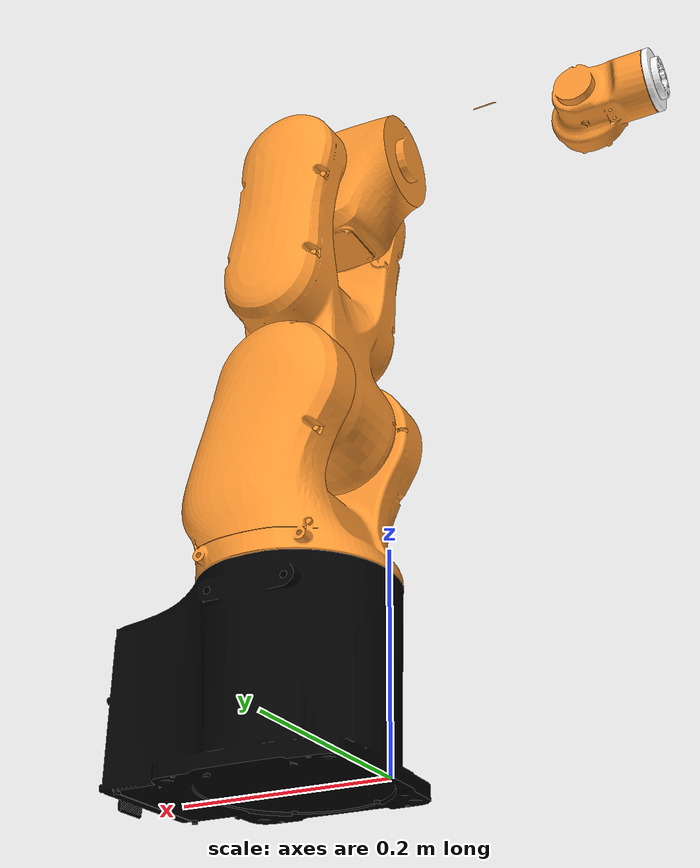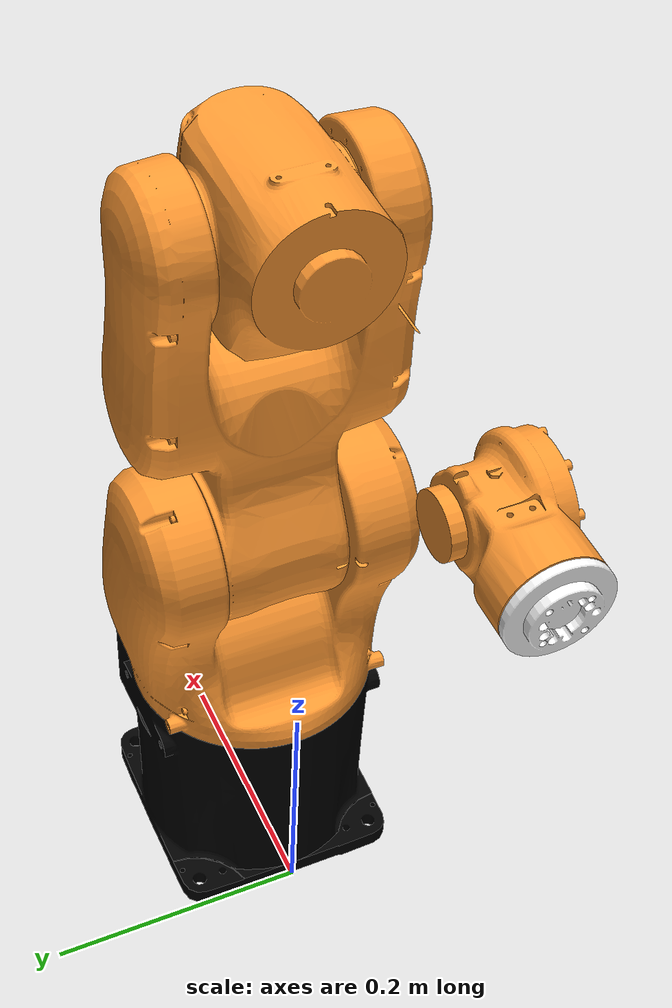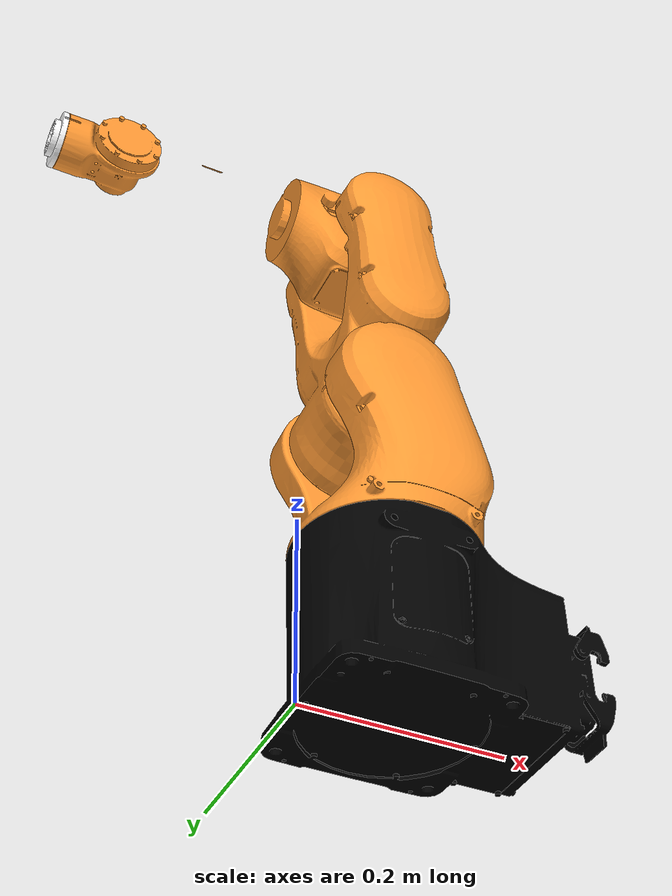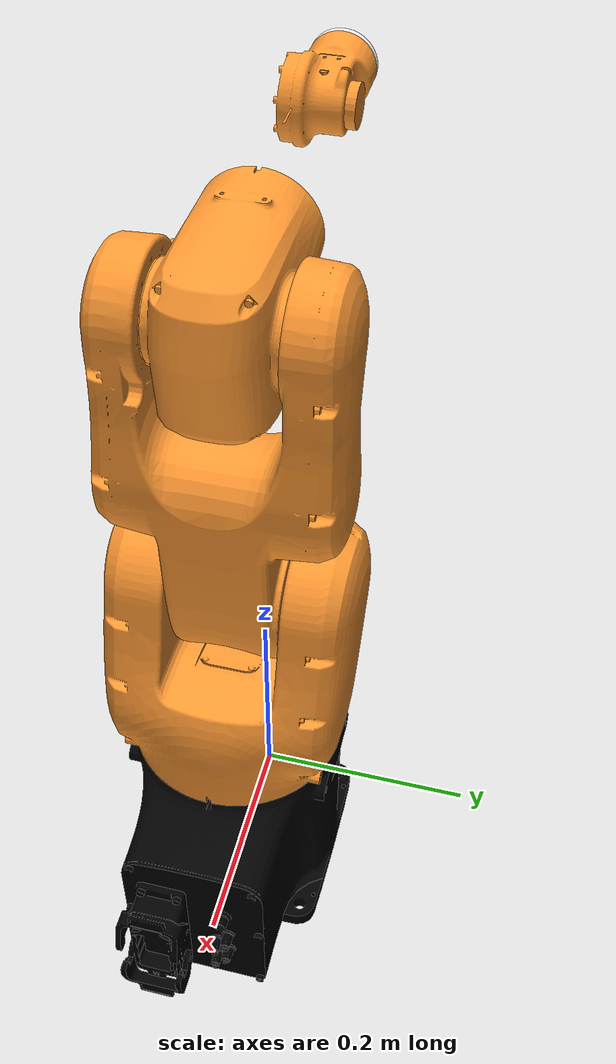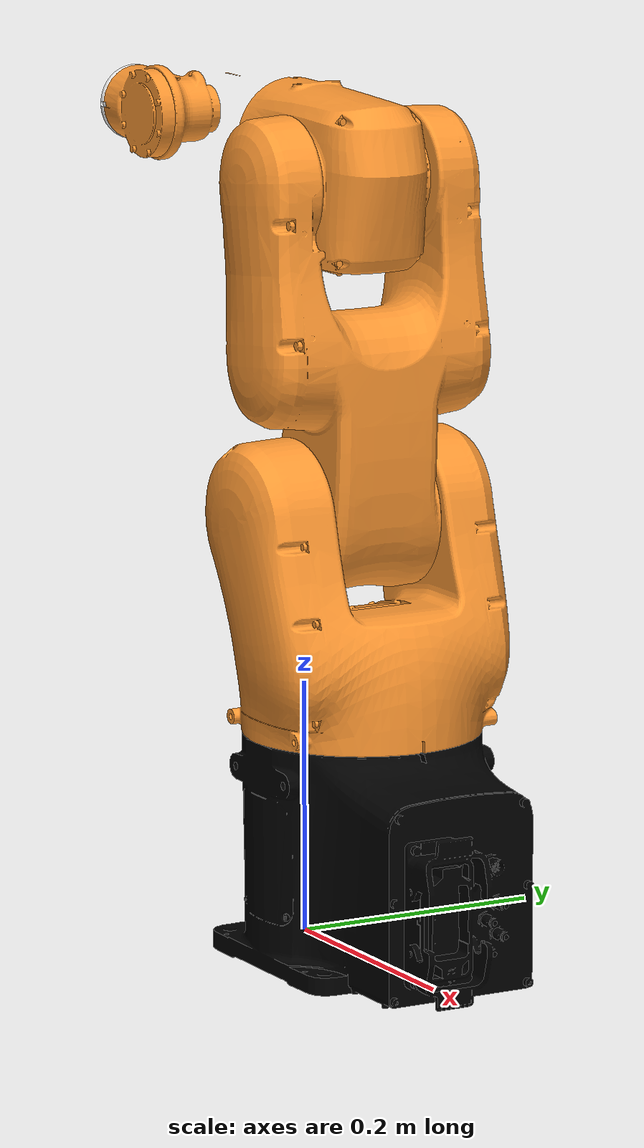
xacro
<?xml version="1.0"?>
<robot xmlns:xacro="http://www.ros.org/wiki/xacro" name="LR4_R560">
    <xacro:arg name="initial_positions_file" default="initial_positions.yaml" />

    <!-- Import LR4_R560 urdf file -->
    <xacro:include filename="$(find erob_description)/urdf/linkhou/linkhou.urdf" />

    <!-- Import control_xacro -->
    <xacro:include filename="LR4_R560.ros2_control.xacro" />

    <xacro:LR4_R560_ros2_control name="LR4_R560_EtherCAT" initial_positions_file="$(arg initial_positions_file)"/>

</robot>

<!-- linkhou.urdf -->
<robot name="LR4_R560">
    <link name="robot_base">
        <collision name="LR4_R560">
            <origin xyz="0.141673 -0.000165 0.081066" rpy="-3.060188 4.708523 -0.081638" />
            <geometry>
                <mesh filename="package://erob_description/meshes/linkhou/linkhou_robot_base_coll_1.dae" />
            </geometry>
        </collision>
        <collision name="LR4_R560">
            <origin xyz="0.141673 -0.000165 0.081066" rpy="-3.060188 4.708523 -0.081638" />
            <geometry>
                <mesh filename="package://erob_description/meshes/linkhou/linkhou_robot_base_coll_2.dae" />
            </geometry>
        </collision>
        <collision name="LR4_R560">
            <origin xyz="0.141673 -0.000165 0.081066" rpy="-3.060188 4.708523 -0.081638" />
            <geometry>
                <mesh filename="package://erob_description/meshes/linkhou/linkhou_robot_base_coll_3.dae" />
            </geometry>
        </collision>
        <collision name="LR4_R560">
            <origin xyz="0.141673 -0.000165 0.081066" rpy="-3.060188 4.708523 -0.081638" />
            <geometry>
                <mesh filename="package://erob_description/meshes/linkhou/linkhou_robot_base_coll_4.dae" />
            </geometry>
        </collision>
        <collision name="LR4_R560">
            <origin xyz="0.141673 -0.000165 0.081066" rpy="-3.060188 4.708523 -0.081638" />
            <geometry>
                <mesh filename="package://erob_description/meshes/linkhou/linkhou_robot_base_coll_5.dae" />
            </geometry>
        </collision>
        <collision name="LR4_R560">
            <origin xyz="0.141673 -0.000165 0.081066" rpy="-3.060188 4.708523 -0.081638" />
            <geometry>
                <mesh filename="package://erob_description/meshes/linkhou/linkhou_robot_base_coll_6.dae" />
            </geometry>
        </collision>
        <collision name="LR4_R560">
            <origin xyz="0.141673 -0.000165 0.081066" rpy="-3.060188 4.708523 -0.081638" />
            <geometry>
                <mesh filename="package://erob_description/meshes/linkhou/linkhou_robot_base_coll_7.dae" />
            </geometry>
        </collision>
        <collision name="LR4_R560">
            <origin xyz="0.141673 -0.000165 0.081066" rpy="-3.060188 4.708523 -0.081638" />
            <geometry>
                <mesh filename="package://erob_description/meshes/linkhou/linkhou_robot_base_coll_8.dae" />
            </geometry>
        </collision>
        <collision name="LR4_R560">
            <origin xyz="0.141673 -0.000165 0.081066" rpy="-3.060188 4.708523 -0.081638" />
            <geometry>
                <mesh filename="package://erob_description/meshes/linkhou/linkhou_robot_base_coll_9.dae" />
            </geometry>
        </collision>
        <collision name="LR4_R560">
            <origin xyz="0.141673 -0.000165 0.081066" rpy="-3.060188 4.708523 -0.081638" />
            <geometry>
                <mesh filename="package://erob_description/meshes/linkhou/linkhou_robot_base_coll_10.dae" />
            </geometry>
        </collision>
        <collision name="LR4_R560">
            <origin xyz="0.141673 -0.000165 0.081066" rpy="-3.060188 4.708523 -0.081638" />
            <geometry>
                <mesh filename="package://erob_description/meshes/linkhou/linkhou_robot_base_coll_11.dae" />
            </geometry>
        </collision>
        <collision name="LR4_R560">
            <origin xyz="0.141673 -0.000165 0.081066" rpy="-3.060188 4.708523 -0.081638" />
            <geometry>
                <mesh filename="package://erob_description/meshes/linkhou/linkhou_robot_base_coll_12.dae" />
            </geometry>
        </collision>
        <collision name="LR4_R560">
            <origin xyz="0.141673 -0.000165 0.081066" rpy="-3.060188 4.708523 -0.081638" />
            <geometry>
                <mesh filename="package://erob_description/meshes/linkhou/linkhou_robot_base_coll_13.dae" />
            </geometry>
        </collision>
        <collision name="LR4_R560">
            <origin xyz="0.141673 -0.000165 0.081066" rpy="-3.060188 4.708523 -0.081638" />
            <geometry>
                <mesh filename="package://erob_description/meshes/linkhou/linkhou_robot_base_coll_14.dae" />
            </geometry>
        </collision>
        <collision name="LR4_R560">
            <origin xyz="0.141673 -0.000165 0.081066" rpy="-3.060188 4.708523 -0.081638" />
            <geometry>
                <mesh filename="package://erob_description/meshes/linkhou/linkhou_robot_base_coll_15.dae" />
            </geometry>
        </collision>
        <collision name="LR4_R560">
            <origin xyz="0.141673 -0.000165 0.081066" rpy="-3.060188 4.708523 -0.081638" />
            <geometry>
                <mesh filename="package://erob_description/meshes/linkhou/linkhou_robot_base_coll_16.dae" />
            </geometry>
        </collision>
        <collision name="LR4_R560">
            <origin xyz="0.141673 -0.000165 0.081066" rpy="-3.060188 4.708523 -0.081638" />
            <geometry>
                <mesh filename="package://erob_description/meshes/linkhou/linkhou_robot_base_coll_17.dae" />
            </geometry>
        </collision>
        <collision name="LR4_R560">
            <origin xyz="0.141673 -0.000165 0.081066" rpy="-3.060188 4.708523 -0.081638" />
            <geometry>
                <mesh filename="package://erob_description/meshes/linkhou/linkhou_robot_base_coll_18.dae" />
            </geometry>
        </collision>
        <collision name="LR4_R560">
            <origin xyz="0.141673 -0.000165 0.081066" rpy="-3.060188 4.708523 -0.081638" />
            <geometry>
                <mesh filename="package://erob_description/meshes/linkhou/linkhou_robot_base_coll_19.dae" />
            </geometry>
        </collision>
        <collision name="LR4_R560">
            <origin xyz="0.141673 -0.000165 0.081066" rpy="-3.060188 4.708523 -0.081638" />
            <geometry>
                <mesh filename="package://erob_description/meshes/linkhou/linkhou_robot_base_coll_20.dae" />
            </geometry>
        </collision>
        <collision name="LR4_R560">
            <origin xyz="0.141673 -0.000165 0.081066" rpy="-3.060188 4.708523 -0.081638" />
            <geometry>
                <mesh filename="package://erob_description/meshes/linkhou/linkhou_robot_base_coll_21.dae" />
            </geometry>
        </collision>
        <collision name="LR4_R560">
            <origin xyz="0.141673 -0.000165 0.081066" rpy="-3.060188 4.708523 -0.081638" />
            <geometry>
                <mesh filename="package://erob_description/meshes/linkhou/linkhou_robot_base_coll_22.dae" />
            </geometry>
        </collision>
        <collision name="LR4_R560">
            <origin xyz="0.141673 -0.000165 0.081066" rpy="-3.060188 4.708523 -0.081638" />
            <geometry>
                <mesh filename="package://erob_description/meshes/linkhou/linkhou_robot_base_coll_23.dae" />
            </geometry>
        </collision>
        <collision name="LR4_R560">
            <origin xyz="0.141673 -0.000165 0.081066" rpy="-3.060188 4.708523 -0.081638" />
            <geometry>
                <mesh filename="package://erob_description/meshes/linkhou/linkhou_robot_base_coll_24.dae" />
            </geometry>
        </collision>
        <collision name="LR4_R560">
            <origin xyz="0.141673 -0.000165 0.081066" rpy="-3.060188 4.708523 -0.081638" />
            <geometry>
                <mesh filename="package://erob_description/meshes/linkhou/linkhou_robot_base_coll_25.dae" />
            </geometry>
        </collision>
        <collision name="LR4_R560">
            <origin xyz="0.141673 -0.000165 0.081066" rpy="-3.060188 4.708523 -0.081638" />
            <geometry>
                <mesh filename="package://erob_description/meshes/linkhou/linkhou_robot_base_coll_26.dae" />
            </geometry>
        </collision>
        <collision name="LR4_R560">
            <origin xyz="0.141673 -0.000165 0.081066" rpy="-3.060188 4.708523 -0.081638" />
            <geometry>
                <mesh filename="package://erob_description/meshes/linkhou/linkhou_robot_base_coll_27.dae" />
            </geometry>
        </collision>
        <collision name="LR4_R560">
            <origin xyz="0.141673 -0.000165 0.081066" rpy="-3.060188 4.708523 -0.081638" />
            <geometry>
                <mesh filename="package://erob_description/meshes/linkhou/linkhou_robot_base_coll_28.dae" />
            </geometry>
        </collision>
        <visual name="LR4_R560_link1_visual">
            <origin xyz="0.142949 0.000366 0.100323" rpy="-0.008230 4.712374 0.008229" />
            <geometry>
                <mesh filename="package://erob_description/meshes/linkhou/linkhou_LR4_R560_link1_visual_vis_1.dae" />
            </geometry>
            <material name="LR4_R560_link1_visual_material">
                <color rgba="0.000000 0.000000 0.000000 1.0" />
            </material>
        </visual>
    </link>
    <joint type="continuous" name="LR4_R560_joint1">
        <axis xyz="0 0 1" />
        <parent link="robot_base" />
        <child link="LR4_R560_link2_respondable" />
        <origin xyz="0.090228 -0.000044 0.200573" rpy="-3.141589 3.141593 3.141593" />
    </joint>
    <link name="LR4_R560_link2_respondable">
        <collision name="LR4_R560_link2_respondable">
            <origin xyz="-0.002580 0.000034 0.090611" rpy="0.001927 3.163632 3.130605" />
            <geometry>
                <mesh filename="package://erob_description/meshes/linkhou/linkhou_LR4_R560_link2_respondable_coll_1.dae" />
            </geometry>
        </collision>
        <collision name="LR4_R560_link2_respondable">
            <origin xyz="-0.002580 0.000034 0.090611" rpy="0.001927 3.163632 3.130605" />
            <geometry>
                <mesh filename="package://erob_description/meshes/linkhou/linkhou_LR4_R560_link2_respondable_coll_2.dae" />
            </geometry>
        </collision>
        <collision name="LR4_R560_link2_respondable">
            <origin xyz="-0.002580 0.000034 0.090611" rpy="0.001927 3.163632 3.130605" />
            <geometry>
                <mesh filename="package://erob_description/meshes/linkhou/linkhou_LR4_R560_link2_respondable_coll_3.dae" />
            </geometry>
        </collision>
        <collision name="LR4_R560_link2_respondable">
            <origin xyz="-0.002580 0.000034 0.090611" rpy="0.001927 3.163632 3.130605" />
            <geometry>
                <mesh filename="package://erob_description/meshes/linkhou/linkhou_LR4_R560_link2_respondable_coll_4.dae" />
            </geometry>
        </collision>
        <collision name="LR4_R560_link2_respondable">
            <origin xyz="-0.002580 0.000034 0.090611" rpy="0.001927 3.163632 3.130605" />
            <geometry>
                <mesh filename="package://erob_description/meshes/linkhou/linkhou_LR4_R560_link2_respondable_coll_5.dae" />
            </geometry>
        </collision>
        <collision name="LR4_R560_link2_respondable">
            <origin xyz="-0.002580 0.000034 0.090611" rpy="0.001927 3.163632 3.130605" />
            <geometry>
                <mesh filename="package://erob_description/meshes/linkhou/linkhou_LR4_R560_link2_respondable_coll_6.dae" />
            </geometry>
        </collision>
        <collision name="LR4_R560_link2_respondable">
            <origin xyz="-0.002580 0.000034 0.090611" rpy="0.001927 3.163632 3.130605" />
            <geometry>
                <mesh filename="package://erob_description/meshes/linkhou/linkhou_LR4_R560_link2_respondable_coll_7.dae" />
            </geometry>
        </collision>
        <collision name="LR4_R560_link2_respondable">
            <origin xyz="-0.002580 0.000034 0.090611" rpy="0.001927 3.163632 3.130605" />
            <geometry>
                <mesh filename="package://erob_description/meshes/linkhou/linkhou_LR4_R560_link2_respondable_coll_8.dae" />
            </geometry>
        </collision>
        <collision name="LR4_R560_link2_respondable">
            <origin xyz="-0.002580 0.000034 0.090611" rpy="0.001927 3.163632 3.130605" />
            <geometry>
                <mesh filename="package://erob_description/meshes/linkhou/linkhou_LR4_R560_link2_respondable_coll_9.dae" />
            </geometry>
        </collision>
        <collision name="LR4_R560_link2_respondable">
            <origin xyz="-0.002580 0.000034 0.090611" rpy="0.001927 3.163632 3.130605" />
            <geometry>
                <mesh filename="package://erob_description/meshes/linkhou/linkhou_LR4_R560_link2_respondable_coll_10.dae" />
            </geometry>
        </collision>
        <collision name="LR4_R560_link2_respondable">
            <origin xyz="-0.002580 0.000034 0.090611" rpy="0.001927 3.163632 3.130605" />
            <geometry>
                <mesh filename="package://erob_description/meshes/linkhou/linkhou_LR4_R560_link2_respondable_coll_11.dae" />
            </geometry>
        </collision>
        <collision name="LR4_R560_link2_respondable">
            <origin xyz="-0.002580 0.000034 0.090611" rpy="0.001927 3.163632 3.130605" />
            <geometry>
                <mesh filename="package://erob_description/meshes/linkhou/linkhou_LR4_R560_link2_respondable_coll_12.dae" />
            </geometry>
        </collision>
        <collision name="LR4_R560_link2_respondable">
            <origin xyz="-0.002580 0.000034 0.090611" rpy="0.001927 3.163632 3.130605" />
            <geometry>
                <mesh filename="package://erob_description/meshes/linkhou/linkhou_LR4_R560_link2_respondable_coll_13.dae" />
            </geometry>
        </collision>
        <collision name="LR4_R560_link2_respondable">
            <origin xyz="-0.002580 0.000034 0.090611" rpy="0.001927 3.163632 3.130605" />
            <geometry>
                <mesh filename="package://erob_description/meshes/linkhou/linkhou_LR4_R560_link2_respondable_coll_14.dae" />
            </geometry>
        </collision>
        <collision name="LR4_R560_link2_respondable">
            <origin xyz="-0.002580 0.000034 0.090611" rpy="0.001927 3.163632 3.130605" />
            <geometry>
                <mesh filename="package://erob_description/meshes/linkhou/linkhou_LR4_R560_link2_respondable_coll_15.dae" />
            </geometry>
        </collision>
        <collision name="LR4_R560_link2_respondable">
            <origin xyz="-0.002580 0.000034 0.090611" rpy="0.001927 3.163632 3.130605" />
            <geometry>
                <mesh filename="package://erob_description/meshes/linkhou/linkhou_LR4_R560_link2_respondable_coll_16.dae" />
            </geometry>
        </collision>
        <collision name="LR4_R560_link2_respondable">
            <origin xyz="-0.002580 0.000034 0.090611" rpy="0.001927 3.163632 3.130605" />
            <geometry>
                <mesh filename="package://erob_description/meshes/linkhou/linkhou_LR4_R560_link2_respondable_coll_17.dae" />
            </geometry>
        </collision>
        <collision name="LR4_R560_link2_respondable">
            <origin xyz="-0.002580 0.000034 0.090611" rpy="0.001927 3.163632 3.130605" />
            <geometry>
                <mesh filename="package://erob_description/meshes/linkhou/linkhou_LR4_R560_link2_respondable_coll_18.dae" />
            </geometry>
        </collision>
        <collision name="LR4_R560_link2_respondable">
            <origin xyz="-0.002580 0.000034 0.090611" rpy="0.001927 3.163632 3.130605" />
            <geometry>
                <mesh filename="package://erob_description/meshes/linkhou/linkhou_LR4_R560_link2_respondable_coll_19.dae" />
            </geometry>
        </collision>
        <collision name="LR4_R560_link2_respondable">
            <origin xyz="-0.002580 0.000034 0.090611" rpy="0.001927 3.163632 3.130605" />
            <geometry>
                <mesh filename="package://erob_description/meshes/linkhou/linkhou_LR4_R560_link2_respondable_coll_20.dae" />
            </geometry>
        </collision>
        <collision name="LR4_R560_link2_respondable">
            <origin xyz="-0.002580 0.000034 0.090611" rpy="0.001927 3.163632 3.130605" />
            <geometry>
                <mesh filename="package://erob_description/meshes/linkhou/linkhou_LR4_R560_link2_respondable_coll_21.dae" />
            </geometry>
        </collision>
        <collision name="LR4_R560_link2_respondable">
            <origin xyz="-0.002580 0.000034 0.090611" rpy="0.001927 3.163632 3.130605" />
            <geometry>
                <mesh filename="package://erob_description/meshes/linkhou/linkhou_LR4_R560_link2_respondable_coll_22.dae" />
            </geometry>
        </collision>
        <collision name="LR4_R560_link2_respondable">
            <origin xyz="-0.002580 0.000034 0.090611" rpy="0.001927 3.163632 3.130605" />
            <geometry>
                <mesh filename="package://erob_description/meshes/linkhou/linkhou_LR4_R560_link2_respondable_coll_23.dae" />
            </geometry>
        </collision>
        <collision name="LR4_R560_link2_respondable">
            <origin xyz="-0.002580 0.000034 0.090611" rpy="0.001927 3.163632 3.130605" />
            <geometry>
                <mesh filename="package://erob_description/meshes/linkhou/linkhou_LR4_R560_link2_respondable_coll_24.dae" />
            </geometry>
        </collision>
        <collision name="LR4_R560_link2_respondable">
            <origin xyz="-0.002580 0.000034 0.090611" rpy="0.001927 3.163632 3.130605" />
            <geometry>
                <mesh filename="package://erob_description/meshes/linkhou/linkhou_LR4_R560_link2_respondable_coll_25.dae" />
            </geometry>
        </collision>
        <collision name="LR4_R560_link2_respondable">
            <origin xyz="-0.002580 0.000034 0.090611" rpy="0.001927 3.163632 3.130605" />
            <geometry>
                <mesh filename="package://erob_description/meshes/linkhou/linkhou_LR4_R560_link2_respondable_coll_26.dae" />
            </geometry>
        </collision>
        <collision name="LR4_R560_link2_respondable">
            <origin xyz="-0.002580 0.000034 0.090611" rpy="0.001927 3.163632 3.130605" />
            <geometry>
                <mesh filename="package://erob_description/meshes/linkhou/linkhou_LR4_R560_link2_respondable_coll_27.dae" />
            </geometry>
        </collision>
        <collision name="LR4_R560_link2_respondable">
            <origin xyz="-0.002580 0.000034 0.090611" rpy="0.001927 3.163632 3.130605" />
            <geometry>
                <mesh filename="package://erob_description/meshes/linkhou/linkhou_LR4_R560_link2_respondable_coll_28.dae" />
            </geometry>
        </collision>
        <visual name="LR4_R560_link2_visual">
            <origin xyz="0.000077 -0.000000 0.089681" rpy="3.141592 3.141589 3.141592" />
            <geometry>
                <mesh filename="package://erob_description/meshes/linkhou/linkhou_LR4_R560_link2_visual_vis_1.dae" />
            </geometry>
            <material name="LR4_R560_link2_visual_material">
                <color rgba="1.000000 0.600000 0.200000 1.0" />
            </material>
        </visual>
    </link>
    <joint type="continuous" name="LR4_R560_joint2">
        <axis xyz="0 0 1" />
        <parent link="LR4_R560_link2_respondable" />
        <child link="LR4_R560_link3_respondable" />
        <origin xyz="-0.020000 -0.000000 0.144500" rpy="-1.570800 3.141593 -3.141592" />
    </joint>
    <link name="LR4_R560_link3_respondable">
        <collision name="LR4_R560_link3_respondable">
            <origin xyz="0.003296 0.126862 0.000113" rpy="1.568994 3.131033 -3.129216" />
            <geometry>
                <mesh filename="package://erob_description/meshes/linkhou/linkhou_LR4_R560_link3_respondable_coll_1.dae" />
            </geometry>
        </collision>
        <collision name="LR4_R560_link3_respondable">
            <origin xyz="0.003296 0.126862 0.000113" rpy="1.568994 3.131033 -3.129216" />
            <geometry>
                <mesh filename="package://erob_description/meshes/linkhou/linkhou_LR4_R560_link3_respondable_coll_2.dae" />
            </geometry>
        </collision>
        <collision name="LR4_R560_link3_respondable">
            <origin xyz="0.003296 0.126862 0.000113" rpy="1.568994 3.131033 -3.129216" />
            <geometry>
                <mesh filename="package://erob_description/meshes/linkhou/linkhou_LR4_R560_link3_respondable_coll_3.dae" />
            </geometry>
        </collision>
        <collision name="LR4_R560_link3_respondable">
            <origin xyz="0.003296 0.126862 0.000113" rpy="1.568994 3.131033 -3.129216" />
            <geometry>
                <mesh filename="package://erob_description/meshes/linkhou/linkhou_LR4_R560_link3_respondable_coll_4.dae" />
            </geometry>
        </collision>
        <collision name="LR4_R560_link3_respondable">
            <origin xyz="0.003296 0.126862 0.000113" rpy="1.568994 3.131033 -3.129216" />
            <geometry>
                <mesh filename="package://erob_description/meshes/linkhou/linkhou_LR4_R560_link3_respondable_coll_5.dae" />
            </geometry>
        </collision>
        <collision name="LR4_R560_link3_respondable">
            <origin xyz="0.003296 0.126862 0.000113" rpy="1.568994 3.131033 -3.129216" />
            <geometry>
                <mesh filename="package://erob_description/meshes/linkhou/linkhou_LR4_R560_link3_respondable_coll_6.dae" />
            </geometry>
        </collision>
        <collision name="LR4_R560_link3_respondable">
            <origin xyz="0.003296 0.126862 0.000113" rpy="1.568994 3.131033 -3.129216" />
            <geometry>
                <mesh filename="package://erob_description/meshes/linkhou/linkhou_LR4_R560_link3_respondable_coll_7.dae" />
            </geometry>
        </collision>
        <collision name="LR4_R560_link3_respondable">
            <origin xyz="0.003296 0.126862 0.000113" rpy="1.568994 3.131033 -3.129216" />
            <geometry>
                <mesh filename="package://erob_description/meshes/linkhou/linkhou_LR4_R560_link3_respondable_coll_8.dae" />
            </geometry>
        </collision>
        <collision name="LR4_R560_link3_respondable">
            <origin xyz="0.003296 0.126862 0.000113" rpy="1.568994 3.131033 -3.129216" />
            <geometry>
                <mesh filename="package://erob_description/meshes/linkhou/linkhou_LR4_R560_link3_respondable_coll_9.dae" />
            </geometry>
        </collision>
        <collision name="LR4_R560_link3_respondable">
            <origin xyz="0.003296 0.126862 0.000113" rpy="1.568994 3.131033 -3.129216" />
            <geometry>
                <mesh filename="package://erob_description/meshes/linkhou/linkhou_LR4_R560_link3_respondable_coll_10.dae" />
            </geometry>
        </collision>
        <collision name="LR4_R560_link3_respondable">
            <origin xyz="0.003296 0.126862 0.000113" rpy="1.568994 3.131033 -3.129216" />
            <geometry>
                <mesh filename="package://erob_description/meshes/linkhou/linkhou_LR4_R560_link3_respondable_coll_11.dae" />
            </geometry>
        </collision>
        <collision name="LR4_R560_link3_respondable">
            <origin xyz="0.003296 0.126862 0.000113" rpy="1.568994 3.131033 -3.129216" />
            <geometry>
                <mesh filename="package://erob_description/meshes/linkhou/linkhou_LR4_R560_link3_respondable_coll_12.dae" />
            </geometry>
        </collision>
        <collision name="LR4_R560_link3_respondable">
            <origin xyz="0.003296 0.126862 0.000113" rpy="1.568994 3.131033 -3.129216" />
            <geometry>
                <mesh filename="package://erob_description/meshes/linkhou/linkhou_LR4_R560_link3_respondable_coll_13.dae" />
            </geometry>
        </collision>
        <collision name="LR4_R560_link3_respondable">
            <origin xyz="0.003296 0.126862 0.000113" rpy="1.568994 3.131033 -3.129216" />
            <geometry>
                <mesh filename="package://erob_description/meshes/linkhou/linkhou_LR4_R560_link3_respondable_coll_14.dae" />
            </geometry>
        </collision>
        <collision name="LR4_R560_link3_respondable">
            <origin xyz="0.003296 0.126862 0.000113" rpy="1.568994 3.131033 -3.129216" />
            <geometry>
                <mesh filename="package://erob_description/meshes/linkhou/linkhou_LR4_R560_link3_respondable_coll_15.dae" />
            </geometry>
        </collision>
        <visual name="LR4_R560_link3_visual">
            <origin xyz="0.004963 0.126339 -0.000129" rpy="1.571017 3.153163 3.127580" />
            <geometry>
                <mesh filename="package://erob_description/meshes/linkhou/linkhou_LR4_R560_link3_visual_vis_1.dae" />
            </geometry>
            <material name="LR4_R560_link3_visual_material">
                <color rgba="1.000000 0.600000 0.200000 1.0" />
            </material>
        </visual>
    </link>
    <joint type="continuous" name="LR4_R560_joint3">
        <axis xyz="0 0 1" />
        <parent link="LR4_R560_link3_respondable" />
        <child link="LR4_R560_link4_respondable" />
        <origin xyz="0.000000 0.260000 0.000000" rpy="-3.141592 3.141600 -0.000000" />
    </joint>
    <link name="LR4_R560_link4_respondable">
        <collision name="LR4_R560_link4_respondable">
            <origin xyz="0.013688 0.002571 0.002943" rpy="2.569508 1.614796 2.498315" />
            <geometry>
                <mesh filename="package://erob_description/meshes/linkhou/linkhou_LR4_R560_link4_respondable_coll_1.dae" />
            </geometry>
        </collision>
        <collision name="LR4_R560_link4_respondable">
            <origin xyz="0.013688 0.002571 0.002943" rpy="2.569508 1.614796 2.498315" />
            <geometry>
                <mesh filename="package://erob_description/meshes/linkhou/linkhou_LR4_R560_link4_respondable_coll_2.dae" />
            </geometry>
        </collision>
        <collision name="LR4_R560_link4_respondable">
            <origin xyz="0.013688 0.002571 0.002943" rpy="2.569508 1.614796 2.498315" />
            <geometry>
                <mesh filename="package://erob_description/meshes/linkhou/linkhou_LR4_R560_link4_respondable_coll_3.dae" />
            </geometry>
        </collision>
        <collision name="LR4_R560_link4_respondable">
            <origin xyz="0.013688 0.002571 0.002943" rpy="2.569508 1.614796 2.498315" />
            <geometry>
                <mesh filename="package://erob_description/meshes/linkhou/linkhou_LR4_R560_link4_respondable_coll_4.dae" />
            </geometry>
        </collision>
        <collision name="LR4_R560_link4_respondable">
            <origin xyz="0.013688 0.002571 0.002943" rpy="2.569508 1.614796 2.498315" />
            <geometry>
                <mesh filename="package://erob_description/meshes/linkhou/linkhou_LR4_R560_link4_respondable_coll_5.dae" />
            </geometry>
        </collision>
        <collision name="LR4_R560_link4_respondable">
            <origin xyz="0.013688 0.002571 0.002943" rpy="2.569508 1.614796 2.498315" />
            <geometry>
                <mesh filename="package://erob_description/meshes/linkhou/linkhou_LR4_R560_link4_respondable_coll_6.dae" />
            </geometry>
        </collision>
        <collision name="LR4_R560_link4_respondable">
            <origin xyz="0.013688 0.002571 0.002943" rpy="2.569508 1.614796 2.498315" />
            <geometry>
                <mesh filename="package://erob_description/meshes/linkhou/linkhou_LR4_R560_link4_respondable_coll_7.dae" />
            </geometry>
        </collision>
        <collision name="LR4_R560_link4_respondable">
            <origin xyz="0.013688 0.002571 0.002943" rpy="2.569508 1.614796 2.498315" />
            <geometry>
                <mesh filename="package://erob_description/meshes/linkhou/linkhou_LR4_R560_link4_respondable_coll_8.dae" />
            </geometry>
        </collision>
        <collision name="LR4_R560_link4_respondable">
            <origin xyz="0.013688 0.002571 0.002943" rpy="2.569508 1.614796 2.498315" />
            <geometry>
                <mesh filename="package://erob_description/meshes/linkhou/linkhou_LR4_R560_link4_respondable_coll_9.dae" />
            </geometry>
        </collision>
        <collision name="LR4_R560_link4_respondable">
            <origin xyz="0.013688 0.002571 0.002943" rpy="2.569508 1.614796 2.498315" />
            <geometry>
                <mesh filename="package://erob_description/meshes/linkhou/linkhou_LR4_R560_link4_respondable_coll_10.dae" />
            </geometry>
        </collision>
        <collision name="LR4_R560_link4_respondable">
            <origin xyz="0.013688 0.002571 0.002943" rpy="2.569508 1.614796 2.498315" />
            <geometry>
                <mesh filename="package://erob_description/meshes/linkhou/linkhou_LR4_R560_link4_respondable_coll_11.dae" />
            </geometry>
        </collision>
        <collision name="LR4_R560_link4_respondable">
            <origin xyz="0.013688 0.002571 0.002943" rpy="2.569508 1.614796 2.498315" />
            <geometry>
                <mesh filename="package://erob_description/meshes/linkhou/linkhou_LR4_R560_link4_respondable_coll_12.dae" />
            </geometry>
        </collision>
        <visual name="LR4_R560_link4_visual">
            <origin xyz="0.011481 0.000933 0.004500" rpy="-1.546407 1.570815 -1.537021" />
            <geometry>
                <mesh filename="package://erob_description/meshes/linkhou/linkhou_LR4_R560_link4_visual_vis_1.dae" />
            </geometry>
            <material name="LR4_R560_link4_visual_material">
                <color rgba="1.000000 0.600000 0.200000 1.0" />
            </material>
        </visual>
    </link>
    <joint type="continuous" name="LR4_R560_joint4">
        <axis xyz="0 0 1" />
        <parent link="LR4_R560_link4_respondable" />
        <child link="LR4_R560_link5_respondable" />
        <origin xyz="0.090184 -0.019152 0.000000" rpy="-1.570785 3.141592 -1.561411" />
    </joint>
    <link name="LR4_R560_link5_respondable">
        <collision name="LR4_R560_link5_respondable">
            <origin xyz="-0.006137 -0.000332 0.112352" rpy="-0.002565 3.173645 -3.075990" />
            <geometry>
                <mesh filename="package://erob_description/meshes/linkhou/linkhou_LR4_R560_link5_respondable_coll_1.dae" />
            </geometry>
        </collision>
        <collision name="LR4_R560_link5_respondable">
            <origin xyz="-0.006137 -0.000332 0.112352" rpy="-0.002565 3.173645 -3.075990" />
            <geometry>
                <mesh filename="package://erob_description/meshes/linkhou/linkhou_LR4_R560_link5_respondable_coll_2.dae" />
            </geometry>
        </collision>
        <collision name="LR4_R560_link5_respondable">
            <origin xyz="-0.006137 -0.000332 0.112352" rpy="-0.002565 3.173645 -3.075990" />
            <geometry>
                <mesh filename="package://erob_description/meshes/linkhou/linkhou_LR4_R560_link5_respondable_coll_3.dae" />
            </geometry>
        </collision>
        <collision name="LR4_R560_link5_respondable">
            <origin xyz="-0.006137 -0.000332 0.112352" rpy="-0.002565 3.173645 -3.075990" />
            <geometry>
                <mesh filename="package://erob_description/meshes/linkhou/linkhou_LR4_R560_link5_respondable_coll_4.dae" />
            </geometry>
        </collision>
        <collision name="LR4_R560_link5_respondable">
            <origin xyz="-0.006137 -0.000332 0.112352" rpy="-0.002565 3.173645 -3.075990" />
            <geometry>
                <mesh filename="package://erob_description/meshes/linkhou/linkhou_LR4_R560_link5_respondable_coll_5.dae" />
            </geometry>
        </collision>
        <collision name="LR4_R560_link5_respondable">
            <origin xyz="-0.006137 -0.000332 0.112352" rpy="-0.002565 3.173645 -3.075990" />
            <geometry>
                <mesh filename="package://erob_description/meshes/linkhou/linkhou_LR4_R560_link5_respondable_coll_6.dae" />
            </geometry>
        </collision>
        <collision name="LR4_R560_link5_respondable">
            <origin xyz="-0.006137 -0.000332 0.112352" rpy="-0.002565 3.173645 -3.075990" />
            <geometry>
                <mesh filename="package://erob_description/meshes/linkhou/linkhou_LR4_R560_link5_respondable_coll_7.dae" />
            </geometry>
        </collision>
        <collision name="LR4_R560_link5_respondable">
            <origin xyz="-0.006137 -0.000332 0.112352" rpy="-0.002565 3.173645 -3.075990" />
            <geometry>
                <mesh filename="package://erob_description/meshes/linkhou/linkhou_LR4_R560_link5_respondable_coll_8.dae" />
            </geometry>
        </collision>
        <collision name="LR4_R560_link5_respondable">
            <origin xyz="-0.006137 -0.000332 0.112352" rpy="-0.002565 3.173645 -3.075990" />
            <geometry>
                <mesh filename="package://erob_description/meshes/linkhou/linkhou_LR4_R560_link5_respondable_coll_9.dae" />
            </geometry>
        </collision>
        <collision name="LR4_R560_link5_respondable">
            <origin xyz="-0.006137 -0.000332 0.112352" rpy="-0.002565 3.173645 -3.075990" />
            <geometry>
                <mesh filename="package://erob_description/meshes/linkhou/linkhou_LR4_R560_link5_respondable_coll_10.dae" />
            </geometry>
        </collision>
        <collision name="LR4_R560_link5_respondable">
            <origin xyz="-0.006137 -0.000332 0.112352" rpy="-0.002565 3.173645 -3.075990" />
            <geometry>
                <mesh filename="package://erob_description/meshes/linkhou/linkhou_LR4_R560_link5_respondable_coll_11.dae" />
            </geometry>
        </collision>
        <collision name="LR4_R560_link5_respondable">
            <origin xyz="-0.006137 -0.000332 0.112352" rpy="-0.002565 3.173645 -3.075990" />
            <geometry>
                <mesh filename="package://erob_description/meshes/linkhou/linkhou_LR4_R560_link5_respondable_coll_12.dae" />
            </geometry>
        </collision>
        <collision name="LR4_R560_link5_respondable">
            <origin xyz="-0.006137 -0.000332 0.112352" rpy="-0.002565 3.173645 -3.075990" />
            <geometry>
                <mesh filename="package://erob_description/meshes/linkhou/linkhou_LR4_R560_link5_respondable_coll_13.dae" />
            </geometry>
        </collision>
        <collision name="LR4_R560_link5_respondable">
            <origin xyz="-0.006137 -0.000332 0.112352" rpy="-0.002565 3.173645 -3.075990" />
            <geometry>
                <mesh filename="package://erob_description/meshes/linkhou/linkhou_LR4_R560_link5_respondable_coll_14.dae" />
            </geometry>
        </collision>
        <visual name="LR4_R560_link5_visual">
            <origin xyz="-0.006347 -0.000195 0.112127" rpy="3.138413 3.183540 -3.081190" />
            <geometry>
                <mesh filename="package://erob_description/meshes/linkhou/linkhou_LR4_R560_link5_visual_vis_1.dae" />
            </geometry>
            <material name="LR4_R560_link5_visual_material">
                <color rgba="1.000000 0.600000 0.200000 1.0" />
            </material>
        </visual>
    </link>
    <joint type="continuous" name="LR4_R560_joint5">
        <axis xyz="0 0 1" />
        <parent link="LR4_R560_link5_respondable" />
        <child link="LR4_R560_link6_respondable" />
        <origin xyz="0.000002 0.000000 0.190000" rpy="-1.570471 1.580184 -3.141265" />
    </joint>
    <link name="LR4_R560_link6_respondable">
        <collision name="LR4_R560_link6_respondable">
            <origin xyz="-0.014049 0.000067 -0.000817" rpy="1.840752 1.577596 1.827882" />
            <geometry>
                <mesh filename="package://erob_description/meshes/linkhou/linkhou_LR4_R560_link6_respondable_coll_1.dae" />
            </geometry>
        </collision>
        <collision name="LR4_R560_link6_respondable">
            <origin xyz="-0.014049 0.000067 -0.000817" rpy="1.840752 1.577596 1.827882" />
            <geometry>
                <mesh filename="package://erob_description/meshes/linkhou/linkhou_LR4_R560_link6_respondable_coll_2.dae" />
            </geometry>
        </collision>
        <collision name="LR4_R560_link6_respondable">
            <origin xyz="-0.014049 0.000067 -0.000817" rpy="1.840752 1.577596 1.827882" />
            <geometry>
                <mesh filename="package://erob_description/meshes/linkhou/linkhou_LR4_R560_link6_respondable_coll_3.dae" />
            </geometry>
        </collision>
        <collision name="LR4_R560_link6_respondable">
            <origin xyz="-0.014049 0.000067 -0.000817" rpy="1.840752 1.577596 1.827882" />
            <geometry>
                <mesh filename="package://erob_description/meshes/linkhou/linkhou_LR4_R560_link6_respondable_coll_4.dae" />
            </geometry>
        </collision>
        <collision name="LR4_R560_link6_respondable">
            <origin xyz="-0.014049 0.000067 -0.000817" rpy="1.840752 1.577596 1.827882" />
            <geometry>
                <mesh filename="package://erob_description/meshes/linkhou/linkhou_LR4_R560_link6_respondable_coll_5.dae" />
            </geometry>
        </collision>
        <collision name="LR4_R560_link6_respondable">
            <origin xyz="-0.014049 0.000067 -0.000817" rpy="1.840752 1.577596 1.827882" />
            <geometry>
                <mesh filename="package://erob_description/meshes/linkhou/linkhou_LR4_R560_link6_respondable_coll_6.dae" />
            </geometry>
        </collision>
        <collision name="LR4_R560_link6_respondable">
            <origin xyz="-0.014049 0.000067 -0.000817" rpy="1.840752 1.577596 1.827882" />
            <geometry>
                <mesh filename="package://erob_description/meshes/linkhou/linkhou_LR4_R560_link6_respondable_coll_7.dae" />
            </geometry>
        </collision>
        <collision name="LR4_R560_link6_respondable">
            <origin xyz="-0.014049 0.000067 -0.000817" rpy="1.840752 1.577596 1.827882" />
            <geometry>
                <mesh filename="package://erob_description/meshes/linkhou/linkhou_LR4_R560_link6_respondable_coll_8.dae" />
            </geometry>
        </collision>
        <collision name="LR4_R560_link6_respondable">
            <origin xyz="-0.014049 0.000067 -0.000817" rpy="1.840752 1.577596 1.827882" />
            <geometry>
                <mesh filename="package://erob_description/meshes/linkhou/linkhou_LR4_R560_link6_respondable_coll_9.dae" />
            </geometry>
        </collision>
        <collision name="LR4_R560_link6_respondable">
            <origin xyz="-0.014049 0.000067 -0.000817" rpy="1.840752 1.577596 1.827882" />
            <geometry>
                <mesh filename="package://erob_description/meshes/linkhou/linkhou_LR4_R560_link6_respondable_coll_10.dae" />
            </geometry>
        </collision>
        <collision name="LR4_R560_link6_respondable">
            <origin xyz="-0.014049 0.000067 -0.000817" rpy="1.840752 1.577596 1.827882" />
            <geometry>
                <mesh filename="package://erob_description/meshes/linkhou/linkhou_LR4_R560_link6_respondable_coll_11.dae" />
            </geometry>
        </collision>
        <collision name="LR4_R560_link6_respondable">
            <origin xyz="-0.014049 0.000067 -0.000817" rpy="1.840752 1.577596 1.827882" />
            <geometry>
                <mesh filename="package://erob_description/meshes/linkhou/linkhou_LR4_R560_link6_respondable_coll_12.dae" />
            </geometry>
        </collision>
        <collision name="LR4_R560_link6_respondable">
            <origin xyz="-0.014049 0.000067 -0.000817" rpy="1.840752 1.577596 1.827882" />
            <geometry>
                <mesh filename="package://erob_description/meshes/linkhou/linkhou_LR4_R560_link6_respondable_coll_13.dae" />
            </geometry>
        </collision>
        <collision name="LR4_R560_link6_respondable">
            <origin xyz="-0.014049 0.000067 -0.000817" rpy="1.840752 1.577596 1.827882" />
            <geometry>
                <mesh filename="package://erob_description/meshes/linkhou/linkhou_LR4_R560_link6_respondable_coll_14.dae" />
            </geometry>
        </collision>
        <collision name="LR4_R560_link6_respondable">
            <origin xyz="-0.014049 0.000067 -0.000817" rpy="1.840752 1.577596 1.827882" />
            <geometry>
                <mesh filename="package://erob_description/meshes/linkhou/linkhou_LR4_R560_link6_respondable_coll_15.dae" />
            </geometry>
        </collision>
        <collision name="LR4_R560_link6_respondable">
            <origin xyz="-0.014049 0.000067 -0.000817" rpy="1.840752 1.577596 1.827882" />
            <geometry>
                <mesh filename="package://erob_description/meshes/linkhou/linkhou_LR4_R560_link6_respondable_coll_16.dae" />
            </geometry>
        </collision>
        <collision name="LR4_R560_link6_respondable">
            <origin xyz="-0.014049 0.000067 -0.000817" rpy="1.840752 1.577596 1.827882" />
            <geometry>
                <mesh filename="package://erob_description/meshes/linkhou/linkhou_LR4_R560_link6_respondable_coll_17.dae" />
            </geometry>
        </collision>
        <collision name="LR4_R560_link6_respondable">
            <origin xyz="-0.014049 0.000067 -0.000817" rpy="1.840752 1.577596 1.827882" />
            <geometry>
                <mesh filename="package://erob_description/meshes/linkhou/linkhou_LR4_R560_link6_respondable_coll_18.dae" />
            </geometry>
        </collision>
        <collision name="LR4_R560_link6_respondable">
            <origin xyz="-0.014049 0.000067 -0.000817" rpy="1.840752 1.577596 1.827882" />
            <geometry>
                <mesh filename="package://erob_description/meshes/linkhou/linkhou_LR4_R560_link6_respondable_coll_19.dae" />
            </geometry>
        </collision>
        <collision name="LR4_R560_link6_respondable">
            <origin xyz="-0.014049 0.000067 -0.000817" rpy="1.840752 1.577596 1.827882" />
            <geometry>
                <mesh filename="package://erob_description/meshes/linkhou/linkhou_LR4_R560_link6_respondable_coll_20.dae" />
            </geometry>
        </collision>
        <collision name="LR4_R560_link6_respondable">
            <origin xyz="-0.014049 0.000067 -0.000817" rpy="1.840752 1.577596 1.827882" />
            <geometry>
                <mesh filename="package://erob_description/meshes/linkhou/linkhou_LR4_R560_link6_respondable_coll_21.dae" />
            </geometry>
        </collision>
        <collision name="LR4_R560_link6_respondable">
            <origin xyz="-0.014049 0.000067 -0.000817" rpy="1.840752 1.577596 1.827882" />
            <geometry>
                <mesh filename="package://erob_description/meshes/linkhou/linkhou_LR4_R560_link6_respondable_coll_22.dae" />
            </geometry>
        </collision>
        <collision name="LR4_R560_link6_respondable">
            <origin xyz="-0.014049 0.000067 -0.000817" rpy="1.840752 1.577596 1.827882" />
            <geometry>
                <mesh filename="package://erob_description/meshes/linkhou/linkhou_LR4_R560_link6_respondable_coll_23.dae" />
            </geometry>
        </collision>
        <collision name="LR4_R560_link6_respondable">
            <origin xyz="-0.014049 0.000067 -0.000817" rpy="1.840752 1.577596 1.827882" />
            <geometry>
                <mesh filename="package://erob_description/meshes/linkhou/linkhou_LR4_R560_link6_respondable_coll_24.dae" />
            </geometry>
        </collision>
        <collision name="LR4_R560_link6_respondable">
            <origin xyz="-0.014049 0.000067 -0.000817" rpy="1.840752 1.577596 1.827882" />
            <geometry>
                <mesh filename="package://erob_description/meshes/linkhou/linkhou_LR4_R560_link6_respondable_coll_25.dae" />
            </geometry>
        </collision>
        <collision name="LR4_R560_link6_respondable">
            <origin xyz="-0.014049 0.000067 -0.000817" rpy="1.840752 1.577596 1.827882" />
            <geometry>
                <mesh filename="package://erob_description/meshes/linkhou/linkhou_LR4_R560_link6_respondable_coll_26.dae" />
            </geometry>
        </collision>
        <collision name="LR4_R560_link6_respondable">
            <origin xyz="-0.014049 0.000067 -0.000817" rpy="1.840752 1.577596 1.827882" />
            <geometry>
                <mesh filename="package://erob_description/meshes/linkhou/linkhou_LR4_R560_link6_respondable_coll_27.dae" />
            </geometry>
        </collision>
        <collision name="LR4_R560_link6_respondable">
            <origin xyz="-0.014049 0.000067 -0.000817" rpy="1.840752 1.577596 1.827882" />
            <geometry>
                <mesh filename="package://erob_description/meshes/linkhou/linkhou_LR4_R560_link6_respondable_coll_28.dae" />
            </geometry>
        </collision>
        <collision name="LR4_R560_link6_respondable">
            <origin xyz="-0.014049 0.000067 -0.000817" rpy="1.840752 1.577596 1.827882" />
            <geometry>
                <mesh filename="package://erob_description/meshes/linkhou/linkhou_LR4_R560_link6_respondable_coll_29.dae" />
            </geometry>
        </collision>
        <collision name="LR4_R560_link6_respondable">
            <origin xyz="-0.014049 0.000067 -0.000817" rpy="1.840752 1.577596 1.827882" />
            <geometry>
                <mesh filename="package://erob_description/meshes/linkhou/linkhou_LR4_R560_link6_respondable_coll_30.dae" />
            </geometry>
        </collision>
        <collision name="LR4_R560_link6_respondable">
            <origin xyz="-0.014049 0.000067 -0.000817" rpy="1.840752 1.577596 1.827882" />
            <geometry>
                <mesh filename="package://erob_description/meshes/linkhou/linkhou_LR4_R560_link6_respondable_coll_31.dae" />
            </geometry>
        </collision>
        <collision name="LR4_R560_link6_respondable">
            <origin xyz="-0.014049 0.000067 -0.000817" rpy="1.840752 1.577596 1.827882" />
            <geometry>
                <mesh filename="package://erob_description/meshes/linkhou/linkhou_LR4_R560_link6_respondable_coll_32.dae" />
            </geometry>
        </collision>
        <collision name="LR4_R560_link6_respondable">
            <origin xyz="-0.014049 0.000067 -0.000817" rpy="1.840752 1.577596 1.827882" />
            <geometry>
                <mesh filename="package://erob_description/meshes/linkhou/linkhou_LR4_R560_link6_respondable_coll_33.dae" />
            </geometry>
        </collision>
        <collision name="LR4_R560_link6_respondable">
            <origin xyz="-0.014049 0.000067 -0.000817" rpy="1.840752 1.577596 1.827882" />
            <geometry>
                <mesh filename="package://erob_description/meshes/linkhou/linkhou_LR4_R560_link6_respondable_coll_34.dae" />
            </geometry>
        </collision>
        <collision name="LR4_R560_link6_respondable">
            <origin xyz="-0.014049 0.000067 -0.000817" rpy="1.840752 1.577596 1.827882" />
            <geometry>
                <mesh filename="package://erob_description/meshes/linkhou/linkhou_LR4_R560_link6_respondable_coll_35.dae" />
            </geometry>
        </collision>
        <collision name="LR4_R560_link6_respondable">
            <origin xyz="-0.014049 0.000067 -0.000817" rpy="1.840752 1.577596 1.827882" />
            <geometry>
                <mesh filename="package://erob_description/meshes/linkhou/linkhou_LR4_R560_link6_respondable_coll_36.dae" />
            </geometry>
        </collision>
        <collision name="LR4_R560_link6_respondable">
            <origin xyz="-0.014049 0.000067 -0.000817" rpy="1.840752 1.577596 1.827882" />
            <geometry>
                <mesh filename="package://erob_description/meshes/linkhou/linkhou_LR4_R560_link6_respondable_coll_37.dae" />
            </geometry>
        </collision>
        <collision name="LR4_R560_link6_respondable">
            <origin xyz="-0.014049 0.000067 -0.000817" rpy="1.840752 1.577596 1.827882" />
            <geometry>
                <mesh filename="package://erob_description/meshes/linkhou/linkhou_LR4_R560_link6_respondable_coll_38.dae" />
            </geometry>
        </collision>
        <visual name="LR4_R560_link6_visual">
            <origin xyz="-0.014749 0.000140 -0.001551" rpy="1.630457 1.570892 1.621053" />
            <geometry>
                <mesh filename="package://erob_description/meshes/linkhou/linkhou_LR4_R560_link6_visual_vis_1.dae" />
            </geometry>
            <material name="LR4_R560_link6_visual_material">
                <color rgba="1.000000 0.600000 0.200000 1.0" />
            </material>
        </visual>
    </link>
    <joint type="continuous" name="LR4_R560_joint6">
        <axis xyz="0 0 1" />
        <parent link="LR4_R560_link6_respondable" />
        <child link="LR4_R560_link7_respondable" />
        <origin xyz="-0.066997 0.000631 -0.000000" rpy="1.570793 3.141592 -1.580191" />
    </joint>
    <link name="LR4_R560_link7_respondable">
        <collision name="LR4_R560_link7_respondable">
            <origin xyz="-0.000154 0.000131 0.005256" rpy="-2.316304 1.571449 1.567710" />
            <geometry>
                <mesh filename="package://erob_description/meshes/linkhou/linkhou_LR4_R560_link7_respondable_coll_1.dae" />
            </geometry>
        </collision>
        <collision name="LR4_R560_link7_respondable">
            <origin xyz="-0.000154 0.000131 0.005256" rpy="-2.316304 1.571449 1.567710" />
            <geometry>
                <mesh filename="package://erob_description/meshes/linkhou/linkhou_LR4_R560_link7_respondable_coll_2.dae" />
            </geometry>
        </collision>
        <collision name="LR4_R560_link7_respondable">
            <origin xyz="-0.000154 0.000131 0.005256" rpy="-2.316304 1.571449 1.567710" />
            <geometry>
                <mesh filename="package://erob_description/meshes/linkhou/linkhou_LR4_R560_link7_respondable_coll_3.dae" />
            </geometry>
        </collision>
        <collision name="LR4_R560_link7_respondable">
            <origin xyz="-0.000154 0.000131 0.005256" rpy="-2.316304 1.571449 1.567710" />
            <geometry>
                <mesh filename="package://erob_description/meshes/linkhou/linkhou_LR4_R560_link7_respondable_coll_4.dae" />
            </geometry>
        </collision>
        <collision name="LR4_R560_link7_respondable">
            <origin xyz="-0.000154 0.000131 0.005256" rpy="-2.316304 1.571449 1.567710" />
            <geometry>
                <mesh filename="package://erob_description/meshes/linkhou/linkhou_LR4_R560_link7_respondable_coll_5.dae" />
            </geometry>
        </collision>
        <collision name="LR4_R560_link7_respondable">
            <origin xyz="-0.000154 0.000131 0.005256" rpy="-2.316304 1.571449 1.567710" />
            <geometry>
                <mesh filename="package://erob_description/meshes/linkhou/linkhou_LR4_R560_link7_respondable_coll_6.dae" />
            </geometry>
        </collision>
        <collision name="LR4_R560_link7_respondable">
            <origin xyz="-0.000154 0.000131 0.005256" rpy="-2.316304 1.571449 1.567710" />
            <geometry>
                <mesh filename="package://erob_description/meshes/linkhou/linkhou_LR4_R560_link7_respondable_coll_7.dae" />
            </geometry>
        </collision>
        <collision name="LR4_R560_link7_respondable">
            <origin xyz="-0.000154 0.000131 0.005256" rpy="-2.316304 1.571449 1.567710" />
            <geometry>
                <mesh filename="package://erob_description/meshes/linkhou/linkhou_LR4_R560_link7_respondable_coll_8.dae" />
            </geometry>
        </collision>
        <collision name="LR4_R560_link7_respondable">
            <origin xyz="-0.000154 0.000131 0.005256" rpy="-2.316304 1.571449 1.567710" />
            <geometry>
                <mesh filename="package://erob_description/meshes/linkhou/linkhou_LR4_R560_link7_respondable_coll_9.dae" />
            </geometry>
        </collision>
        <collision name="LR4_R560_link7_respondable">
            <origin xyz="-0.000154 0.000131 0.005256" rpy="-2.316304 1.571449 1.567710" />
            <geometry>
                <mesh filename="package://erob_description/meshes/linkhou/linkhou_LR4_R560_link7_respondable_coll_10.dae" />
            </geometry>
        </collision>
        <collision name="LR4_R560_link7_respondable">
            <origin xyz="-0.000154 0.000131 0.005256" rpy="-2.316304 1.571449 1.567710" />
            <geometry>
                <mesh filename="package://erob_description/meshes/linkhou/linkhou_LR4_R560_link7_respondable_coll_11.dae" />
            </geometry>
        </collision>
        <collision name="LR4_R560_link7_respondable">
            <origin xyz="-0.000154 0.000131 0.005256" rpy="-2.316304 1.571449 1.567710" />
            <geometry>
                <mesh filename="package://erob_description/meshes/linkhou/linkhou_LR4_R560_link7_respondable_coll_12.dae" />
            </geometry>
        </collision>
        <collision name="LR4_R560_link7_respondable">
            <origin xyz="-0.000154 0.000131 0.005256" rpy="-2.316304 1.571449 1.567710" />
            <geometry>
                <mesh filename="package://erob_description/meshes/linkhou/linkhou_LR4_R560_link7_respondable_coll_13.dae" />
            </geometry>
        </collision>
        <collision name="LR4_R560_link7_respondable">
            <origin xyz="-0.000154 0.000131 0.005256" rpy="-2.316304 1.571449 1.567710" />
            <geometry>
                <mesh filename="package://erob_description/meshes/linkhou/linkhou_LR4_R560_link7_respondable_coll_14.dae" />
            </geometry>
        </collision>
        <collision name="LR4_R560_link7_respondable">
            <origin xyz="-0.000154 0.000131 0.005256" rpy="-2.316304 1.571449 1.567710" />
            <geometry>
                <mesh filename="package://erob_description/meshes/linkhou/linkhou_LR4_R560_link7_respondable_coll_15.dae" />
            </geometry>
        </collision>
        <collision name="LR4_R560_link7_respondable">
            <origin xyz="-0.000154 0.000131 0.005256" rpy="-2.316304 1.571449 1.567710" />
            <geometry>
                <mesh filename="package://erob_description/meshes/linkhou/linkhou_LR4_R560_link7_respondable_coll_16.dae" />
            </geometry>
        </collision>
        <collision name="LR4_R560_link7_respondable">
            <origin xyz="-0.000154 0.000131 0.005256" rpy="-2.316304 1.571449 1.567710" />
            <geometry>
                <mesh filename="package://erob_description/meshes/linkhou/linkhou_LR4_R560_link7_respondable_coll_17.dae" />
            </geometry>
        </collision>
        <collision name="LR4_R560_link7_respondable">
            <origin xyz="-0.000154 0.000131 0.005256" rpy="-2.316304 1.571449 1.567710" />
            <geometry>
                <mesh filename="package://erob_description/meshes/linkhou/linkhou_LR4_R560_link7_respondable_coll_18.dae" />
            </geometry>
        </collision>
        <collision name="LR4_R560_link7_respondable">
            <origin xyz="-0.000154 0.000131 0.005256" rpy="-2.316304 1.571449 1.567710" />
            <geometry>
                <mesh filename="package://erob_description/meshes/linkhou/linkhou_LR4_R560_link7_respondable_coll_19.dae" />
            </geometry>
        </collision>
        <collision name="LR4_R560_link7_respondable">
            <origin xyz="-0.000154 0.000131 0.005256" rpy="-2.316304 1.571449 1.567710" />
            <geometry>
                <mesh filename="package://erob_description/meshes/linkhou/linkhou_LR4_R560_link7_respondable_coll_20.dae" />
            </geometry>
        </collision>
        <collision name="LR4_R560_link7_respondable">
            <origin xyz="-0.000154 0.000131 0.005256" rpy="-2.316304 1.571449 1.567710" />
            <geometry>
                <mesh filename="package://erob_description/meshes/linkhou/linkhou_LR4_R560_link7_respondable_coll_21.dae" />
            </geometry>
        </collision>
        <collision name="LR4_R560_link7_respondable">
            <origin xyz="-0.000154 0.000131 0.005256" rpy="-2.316304 1.571449 1.567710" />
            <geometry>
                <mesh filename="package://erob_description/meshes/linkhou/linkhou_LR4_R560_link7_respondable_coll_22.dae" />
            </geometry>
        </collision>
        <collision name="LR4_R560_link7_respondable">
            <origin xyz="-0.000154 0.000131 0.005256" rpy="-2.316304 1.571449 1.567710" />
            <geometry>
                <mesh filename="package://erob_description/meshes/linkhou/linkhou_LR4_R560_link7_respondable_coll_23.dae" />
            </geometry>
        </collision>
        <collision name="LR4_R560_link7_respondable">
            <origin xyz="-0.000154 0.000131 0.005256" rpy="-2.316304 1.571449 1.567710" />
            <geometry>
                <mesh filename="package://erob_description/meshes/linkhou/linkhou_LR4_R560_link7_respondable_coll_24.dae" />
            </geometry>
        </collision>
        <collision name="LR4_R560_link7_respondable">
            <origin xyz="-0.000154 0.000131 0.005256" rpy="-2.316304 1.571449 1.567710" />
            <geometry>
                <mesh filename="package://erob_description/meshes/linkhou/linkhou_LR4_R560_link7_respondable_coll_25.dae" />
            </geometry>
        </collision>
        <collision name="LR4_R560_link7_respondable">
            <origin xyz="-0.000154 0.000131 0.005256" rpy="-2.316304 1.571449 1.567710" />
            <geometry>
                <mesh filename="package://erob_description/meshes/linkhou/linkhou_LR4_R560_link7_respondable_coll_26.dae" />
            </geometry>
        </collision>
        <collision name="LR4_R560_link7_respondable">
            <origin xyz="-0.000154 0.000131 0.005256" rpy="-2.316304 1.571449 1.567710" />
            <geometry>
                <mesh filename="package://erob_description/meshes/linkhou/linkhou_LR4_R560_link7_respondable_coll_27.dae" />
            </geometry>
        </collision>
        <collision name="LR4_R560_link7_respondable">
            <origin xyz="-0.000154 0.000131 0.005256" rpy="-2.316304 1.571449 1.567710" />
            <geometry>
                <mesh filename="package://erob_description/meshes/linkhou/linkhou_LR4_R560_link7_respondable_coll_28.dae" />
            </geometry>
        </collision>
        <collision name="LR4_R560_link7_respondable">
            <origin xyz="-0.000154 0.000131 0.005256" rpy="-2.316304 1.571449 1.567710" />
            <geometry>
                <mesh filename="package://erob_description/meshes/linkhou/linkhou_LR4_R560_link7_respondable_coll_29.dae" />
            </geometry>
        </collision>
        <collision name="LR4_R560_link7_respondable">
            <origin xyz="-0.000154 0.000131 0.005256" rpy="-2.316304 1.571449 1.567710" />
            <geometry>
                <mesh filename="package://erob_description/meshes/linkhou/linkhou_LR4_R560_link7_respondable_coll_30.dae" />
            </geometry>
        </collision>
        <collision name="LR4_R560_link7_respondable">
            <origin xyz="-0.000154 0.000131 0.005256" rpy="-2.316304 1.571449 1.567710" />
            <geometry>
                <mesh filename="package://erob_description/meshes/linkhou/linkhou_LR4_R560_link7_respondable_coll_31.dae" />
            </geometry>
        </collision>
        <collision name="LR4_R560_link7_respondable">
            <origin xyz="-0.000154 0.000131 0.005256" rpy="-2.316304 1.571449 1.567710" />
            <geometry>
                <mesh filename="package://erob_description/meshes/linkhou/linkhou_LR4_R560_link7_respondable_coll_32.dae" />
            </geometry>
        </collision>
        <collision name="LR4_R560_link7_respondable">
            <origin xyz="-0.000154 0.000131 0.005256" rpy="-2.316304 1.571449 1.567710" />
            <geometry>
                <mesh filename="package://erob_description/meshes/linkhou/linkhou_LR4_R560_link7_respondable_coll_33.dae" />
            </geometry>
        </collision>
        <collision name="LR4_R560_link7_respondable">
            <origin xyz="-0.000154 0.000131 0.005256" rpy="-2.316304 1.571449 1.567710" />
            <geometry>
                <mesh filename="package://erob_description/meshes/linkhou/linkhou_LR4_R560_link7_respondable_coll_34.dae" />
            </geometry>
        </collision>
        <collision name="LR4_R560_link7_respondable">
            <origin xyz="-0.000154 0.000131 0.005256" rpy="-2.316304 1.571449 1.567710" />
            <geometry>
                <mesh filename="package://erob_description/meshes/linkhou/linkhou_LR4_R560_link7_respondable_coll_35.dae" />
            </geometry>
        </collision>
        <collision name="LR4_R560_link7_respondable">
            <origin xyz="-0.000154 0.000131 0.005256" rpy="-2.316304 1.571449 1.567710" />
            <geometry>
                <mesh filename="package://erob_description/meshes/linkhou/linkhou_LR4_R560_link7_respondable_coll_36.dae" />
            </geometry>
        </collision>
        <collision name="LR4_R560_link7_respondable">
            <origin xyz="-0.000154 0.000131 0.005256" rpy="-2.316304 1.571449 1.567710" />
            <geometry>
                <mesh filename="package://erob_description/meshes/linkhou/linkhou_LR4_R560_link7_respondable_coll_37.dae" />
            </geometry>
        </collision>
        <visual name="LR4_R560_link7_visual">
            <origin xyz="0.000012 0.000047 0.005250" rpy="-0.918595 1.570836 -1.164261" />
            <geometry>
                <mesh filename="package://erob_description/meshes/linkhou/linkhou_LR4_R560_link7_visual_vis_1.dae" />
            </geometry>
            <material name="LR4_R560_link7_visual_material">
                <color rgba="1.000000 1.000000 1.000000 1.0" />
            </material>
        </visual>
    </link>
</robot>
